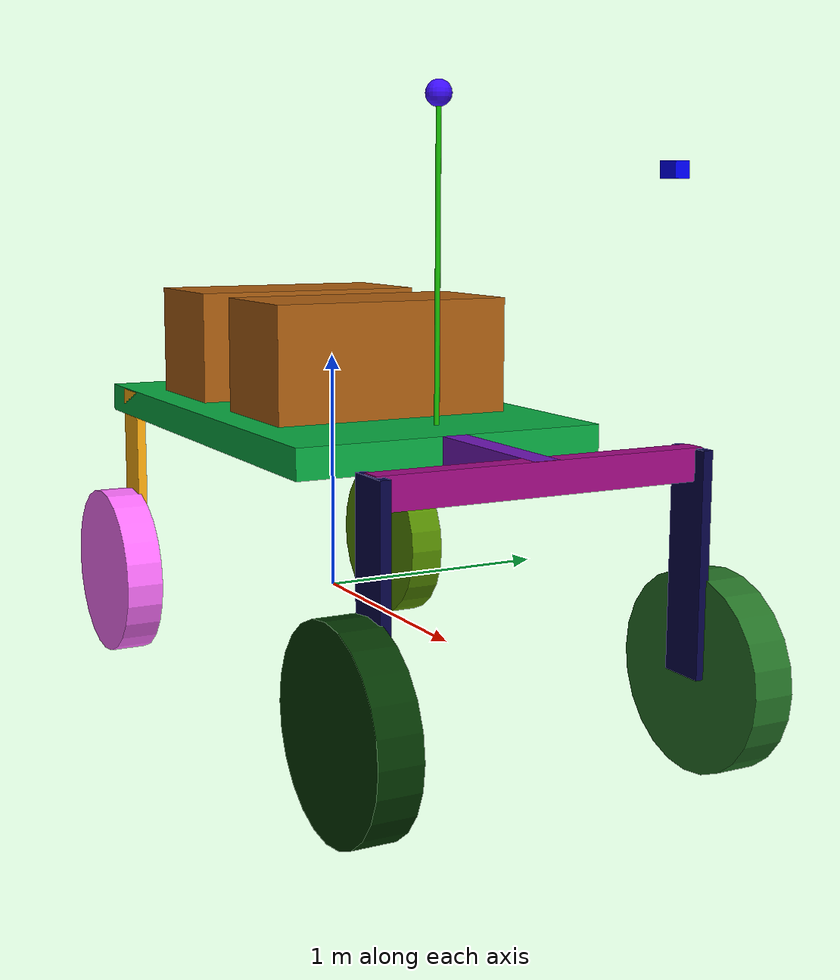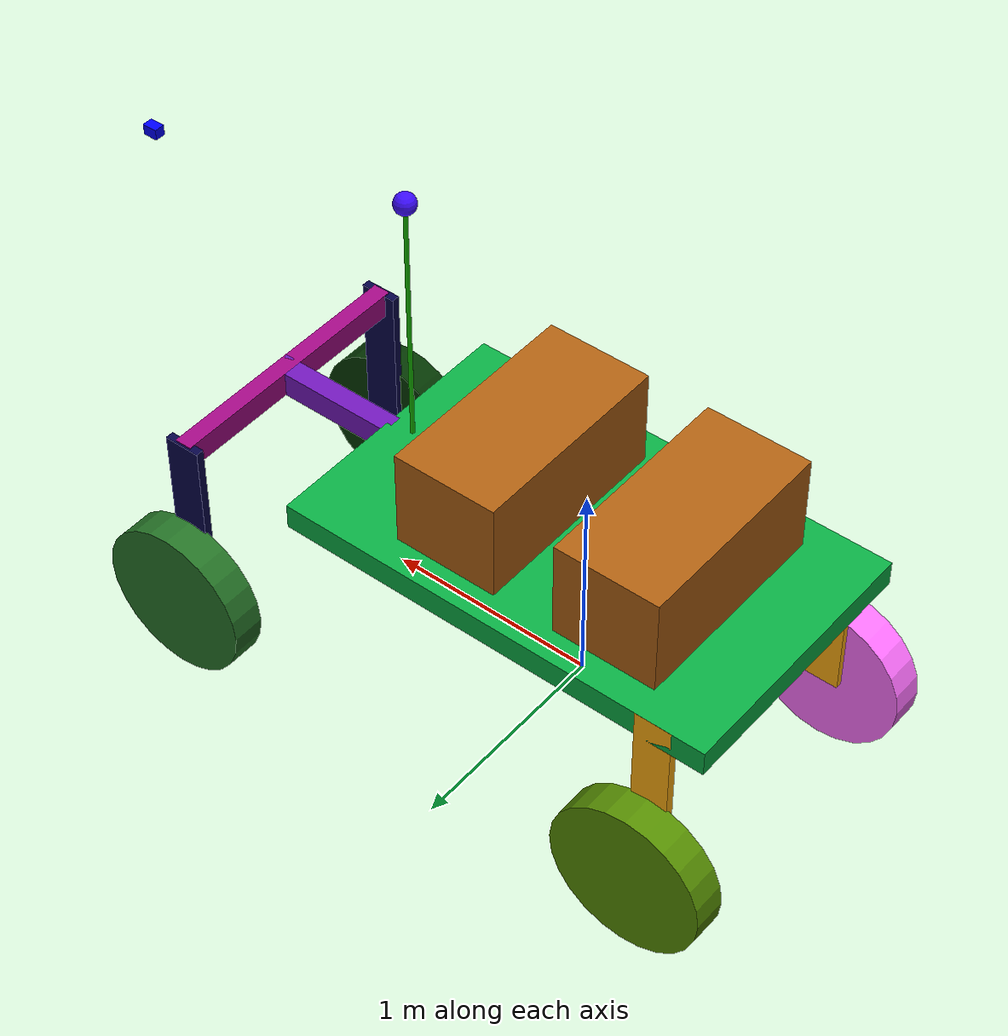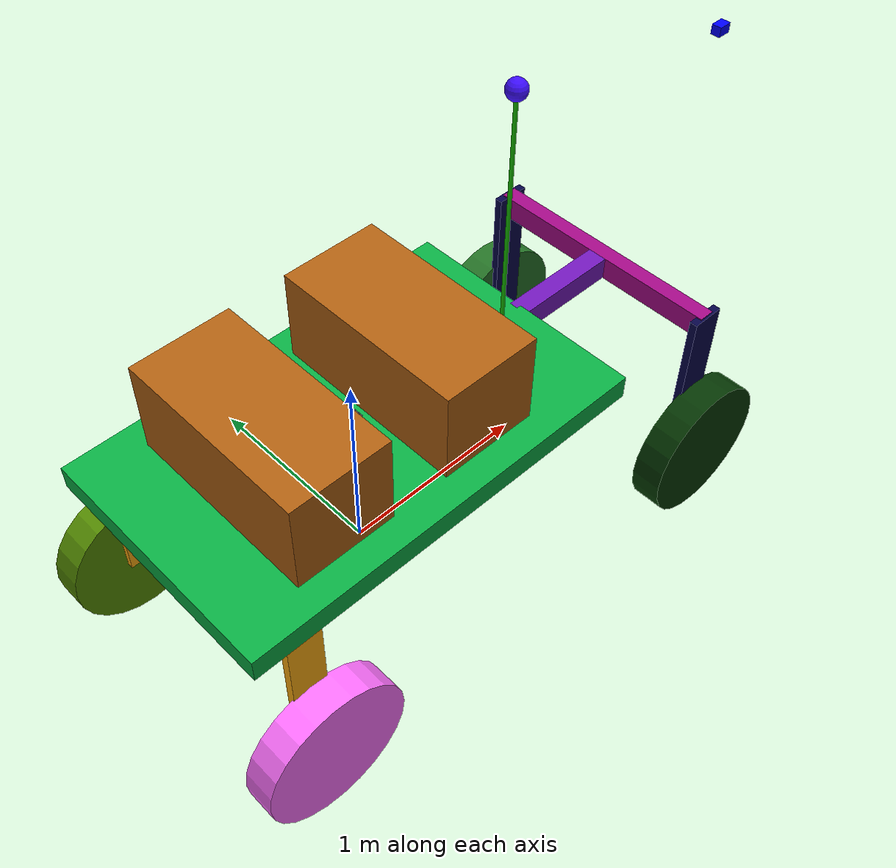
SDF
<sdf version='1.11'>
  <model name='my_robot'>
    <link name='base_footprint'>
      <inertial>
        <pose>-0.047846891008250701 -7.9111714246677172e-06 0.77992008474513574 0 0 0</pose>
        <mass>542.30000000000007</mass>
        <inertia>
          <ixx>94.110358383356925</ixx>
          <ixy>0.004152284086657014</ixy>
          <ixz>-10.802908813464351</ixz>
          <iyy>207.84156108052571</iyy>
          <iyz>-0.03680997659772535</iyz>
          <izz>264.91518770201259</izz>
        </inertia>
      </inertial>
      <collision name='base_footprint_fixed_joint_lump__base_link_collision'>
        <pose>0 0 0.73999999999999999 0 0 3.1415926535897931</pose>
        <geometry>
          <box>
            <size>2.1099999999999999 1.28 0.12</size>
          </box>
        </geometry>
        <surface>
          <contact>
            <ode/>
          </contact>
          <friction>
            <ode/>
          </friction>
        </surface>
      </collision>
      <collision name='base_footprint_fixed_joint_lump__back_left_base_collision_1'>
        <pose>-0.812261587359978 0.62000000000000011 0.38439626969322149 0 0 3.1415926535897931</pose>
        <geometry>
          <box>
            <size>0.17499999999999999 0.040000000000000001 0.82999999999999996</size>
          </box>
        </geometry>
      </collision>
      <collision name='base_footprint_fixed_joint_lump__back_load_collision_2'>
        <pose>-0.46646768743264949 5.7125816032006232e-17 1.0153277941857759 0 0 3.1415926535897931</pose>
        <geometry>
          <box>
            <size>0.5 1 0.5</size>
          </box>
        </geometry>
      </collision>
      <collision name='base_footprint_fixed_joint_lump__back_right_base_collision_3'>
        <pose>-0.81226158735997822 -0.61999999999999988 0.38 0 0 3.1415926535897931</pose>
        <geometry>
          <box>
            <size>0.17499999999999999 0.040000000000000001 0.82999999999999996</size>
          </box>
        </geometry>
      </collision>
      <collision name='base_footprint_fixed_joint_lump__front_load_collision_4'>
        <pose>0.32806438331095772 -4.0176299693601458e-17 1.0153277941857759 0 0 3.1415926535897931</pose>
        <geometry>
          <box>
            <size>0.5 1 0.5</size>
          </box>
        </geometry>
      </collision>
      <collision name='base_footprint_fixed_joint_lump__lidar_base_collision_5'>
        <pose>0.92000000000000004 -0.0021451141318012418 1.421195549355708 0 0 3.1415926535897931</pose>
        <geometry>
          <cylinder>
            <length>1.2</length>
            <radius>0.01</radius>
          </cylinder>
        </geometry>
      </collision>
      <collision name='base_footprint_fixed_joint_lump__lidar_collision_6'>
        <pose>0.92000000000000004 -0.0021451141318012418 2.0384650020977459 0 0 3.1415926535897931</pose>
        <geometry>
          <sphere>
            <radius>0.050000000000000003</radius>
          </sphere>
        </geometry>
        <surface>
          <contact>
            <ode/>
          </contact>
          <friction>
            <ode/>
          </friction>
        </surface>
      </collision>
      <collision name='base_footprint_fixed_joint_lump__gps_link_collision_8'>
        <pose>0 0 0.81000000000000005 0 0 3.1415926535897931</pose>
        <geometry>
          <box>
            <size>0.070000000000000007 0.050000000000000003 0.050000000000000003</size>
          </box>
        </geometry>
        <surface>
          <contact>
            <ode/>
          </contact>
          <friction>
            <ode/>
          </friction>
        </surface>
      </collision>
      <collision name='base_footprint_fixed_joint_lump__imu_link_collision_9'>
        <pose>-0.10000000000000001 1.224646799147353e-17 0.83999999999999997 0 0 3.1415926535897931</pose>
        <geometry>
          <box>
            <size>0.070000000000000007 0.050000000000000003 0.050000000000000003</size>
          </box>
        </geometry>
        <surface>
          <contact>
            <ode/>
          </contact>
          <friction>
            <ode/>
          </friction>
        </surface>
      </collision>
      <visual name='base_footprint_fixed_joint_lump__base_link_visual'>
        <pose>0 0 0.73999999999999999 0 0 3.1415926535897931</pose>
        <geometry>
          <box>
            <size>2.1099999999999999 1.28 0.12</size>
          </box>
        </geometry>
        <material>
          <script>
            <name>Gazebo/Grey</name>
            <uri>file://media/materials/scripts/gazebo.material</uri>
          </script>
          <diffuse>0.0341511145 0.674349368 0.26079607 1</diffuse>
          <ambient>0.0341511145 0.674349368 0.26079607 1</ambient>
        </material>
      </visual>
      <visual name='base_footprint_fixed_joint_lump__back_left_base_visual_1'>
        <pose>-0.812261587359978 0.62000000000000011 0.38439626969322149 0 0 3.1415926535897931</pose>
        <geometry>
          <box>
            <size>0.17499999999999999 0.040000000000000001 0.82999999999999996</size>
          </box>
        </geometry>
        <material>
          <diffuse>1 0.68215555 0.0602147803 1</diffuse>
          <ambient>1 0.68215555 0.0602147803 1</ambient>
        </material>
      </visual>
      <visual name='base_footprint_fixed_joint_lump__back_load_visual_2'>
        <pose>-0.46646768743264949 5.7125816032006232e-17 1.0153277941857759 0 0 3.1415926535897931</pose>
        <geometry>
          <box>
            <size>0.5 1 0.5</size>
          </box>
        </geometry>
        <material>
          <diffuse>0.68215555 0.375679731 0.0701606125 1</diffuse>
          <ambient>0.68215555 0.375679731 0.0701606125 1</ambient>
        </material>
      </visual>
      <visual name='base_footprint_fixed_joint_lump__back_right_base_visual_3'>
        <pose>-0.81226158735997822 -0.61999999999999988 0.38 0 0 3.1415926535897931</pose>
        <geometry>
          <box>
            <size>0.17499999999999999 0.040000000000000001 0.82999999999999996</size>
          </box>
        </geometry>
        <material>
          <diffuse>1 0.68215555 0.0602147803 1</diffuse>
          <ambient>1 0.68215555 0.0602147803 1</ambient>
        </material>
      </visual>
      <visual name='base_footprint_fixed_joint_lump__front_load_visual_4'>
        <pose>0.32806438331095772 -4.0176299693601458e-17 1.0153277941857759 0 0 3.1415926535897931</pose>
        <geometry>
          <box>
            <size>0.5 1 0.5</size>
          </box>
        </geometry>
        <material>
          <diffuse>0.68215555 0.375679731 0.0701606125 1</diffuse>
          <ambient>0.68215555 0.375679731 0.0701606125 1</ambient>
        </material>
      </visual>
      <visual name='base_footprint_fixed_joint_lump__lidar_base_visual_5'>
        <pose>0.92000000000000004 -0.0021451141318012418 1.421195549355708 0 0 3.1415926535897931</pose>
        <geometry>
          <cylinder>
            <length>1.2</length>
            <radius>0.01</radius>
          </cylinder>
        </geometry>
        <material>
          <diffuse>0.083282426 0.738273561 0.0100289909 1</diffuse>
          <ambient>0.083282426 0.738273561 0.0100289909 1</ambient>
        </material>
      </visual>
      <visual name='base_footprint_fixed_joint_lump__lidar_visual_6'>
        <pose>0.92000000000000004 -0.0021451141318012418 2.0384650020977459 0 0 3.1415926535897931</pose>
        <geometry>
          <sphere>
            <radius>0.050000000000000003</radius>
          </sphere>
        </geometry>
        <material>
          <diffuse>0.239002109 0.0494327955 1 1</diffuse>
          <ambient>0.239002109 0.0494327955 1 1</ambient>
        </material>
      </visual>
      <visual name='base_footprint_fixed_joint_lump__gps_link_visual_8'>
        <pose>0 0 0.81000000000000005 0 0 3.1415926535897931</pose>
        <geometry>
          <box>
            <size>0.070000000000000007 0.050000000000000003 0.050000000000000003</size>
          </box>
        </geometry>
        <material>
          <diffuse>0 0 0 1</diffuse>
          <ambient>0 0 0 1</ambient>
        </material>
      </visual>
      <visual name='base_footprint_fixed_joint_lump__imu_link_visual_9'>
        <pose>-0.10000000000000001 1.224646799147353e-17 0.83999999999999997 0 0 3.1415926535897931</pose>
        <geometry>
          <box>
            <size>0.070000000000000007 0.050000000000000003 0.050000000000000003</size>
          </box>
        </geometry>
        <material>
          <diffuse>0 0 1 1</diffuse>
          <ambient>0 0 1 1</ambient>
        </material>
      </visual>
      <sensor name='gpu_lidar' type='gpu_lidar'>
        <update_rate>10</update_rate>
        <topic>scan</topic>
        <lidar>
          <scan>
            <horizontal>
              <samples>720</samples>
              <resolution>1</resolution>
              <min_angle>-3.1415926535897931</min_angle>
              <max_angle>3.1415926535897931</max_angle>
            </horizontal>
          </scan>
          <range>
            <min>0.050000000000000003</min>
            <max>10</max>
            <resolution>0.01</resolution>
          </range>
          <noise>
            <type>gaussian</type>
            <mean>0</mean>
            <stddev>0.01</stddev>
          </noise>
          <frame_id>lidar</frame_id>
        </lidar>
        <always_on>true</always_on>
        <visualize>true</visualize>
        <pose>0.92000000000000004 -0.00214511 2.0384600000000002 0 0 3.1415899999999999</pose>
        <gz_frame_id>lidar</gz_frame_id>
      </sensor>
      <sensor name='navsat' type='navsat'>
        <always_on>true</always_on>
        <update_rate>10</update_rate>
        <topic>navsat</topic>
        <pose>0 0 0.81000000000000005 0 0 3.1415899999999999</pose>
        <gz_frame_id>gps_link</gz_frame_id>
        <gps/>
      </sensor>
      <sensor name='imu' type='imu'>
        <update_rate>10</update_rate>
        <always_on>true</always_on>
        <update_rate>1</update_rate>
        <visualize>true</visualize>
        <topic>imu</topic>
        <pose>-0.10000000000000001 1.22465e-17 0.83999999999999997 0 0 3.1415899999999999</pose>
        <gz_frame_id>imu_link</gz_frame_id>
        <imu/>
      </sensor>
    </link>
    <joint name='back_left_base_to_back_left_wheel' type='revolute'>
      <pose relative_to='base_footprint'>-0.812261587359978 0.71000000000000008 -0.025603730306778431 1.5707963267948959 0 3.1415926535897931</pose>
      <parent>base_footprint</parent>
      <child>back_left_wheel</child>
      <axis>
        <xyz>0 0 1</xyz>
        <limit>
          <lower>-inf</lower>
          <upper>inf</upper>
        </limit>
        <dynamics>
          <spring_reference>0</spring_reference>
          <spring_stiffness>0</spring_stiffness>
        </dynamics>
      </axis>
    </joint>
    <link name='back_left_wheel'>
      <pose relative_to='back_left_base_to_back_left_wheel'>0 0 0 0 0 0</pose>
      <inertial>
        <pose>0 0 0 0 0 0</pose>
        <mass>60</mass>
        <inertia>
          <ixx>2.1800000000000002</ixx>
          <ixy>0</ixy>
          <ixz>0</ixz>
          <iyy>2.1800000000000002</iyy>
          <iyz>0</iyz>
          <izz>4.1070000000000002</izz>
        </inertia>
      </inertial>
      <collision name='back_left_wheel_collision'>
        <pose>0 0 0 0 0 0</pose>
        <geometry>
          <cylinder>
            <length>0.16</length>
            <radius>0.37</radius>
          </cylinder>
        </geometry>
      </collision>
      <visual name='back_left_wheel_visual'>
        <pose>0 0 0 0 0 0</pose>
        <geometry>
          <cylinder>
            <length>0.16</length>
            <radius>0.37</radius>
          </cylinder>
        </geometry>
        <material>
          <diffuse>0.332944512 0.549571455 0.00756104104 1</diffuse>
          <ambient>0.332944512 0.549571455 0.00756104104 1</ambient>
        </material>
      </visual>
    </link>
    <joint name='back_right_base_to_back_right_wheel' type='revolute'>
      <pose relative_to='base_footprint'>-0.81226158735997822 -0.70999999999999985 -0.03000000000000003 1.5707963267948959 0 3.1415926535897931</pose>
      <parent>base_footprint</parent>
      <child>back_right_wheel</child>
      <axis>
        <xyz>0 0 1</xyz>
        <limit>
          <lower>-inf</lower>
          <upper>inf</upper>
        </limit>
        <dynamics>
          <spring_reference>0</spring_reference>
          <spring_stiffness>0</spring_stiffness>
        </dynamics>
      </axis>
    </joint>
    <link name='back_right_wheel'>
      <pose relative_to='back_right_base_to_back_right_wheel'>0 0 0 0 0 0</pose>
      <inertial>
        <pose>0 0 0 0 0 0</pose>
        <mass>60</mass>
        <inertia>
          <ixx>2.1800000000000002</ixx>
          <ixy>0</ixy>
          <ixz>0</ixz>
          <iyy>2.1800000000000002</iyy>
          <iyz>0</iyz>
          <izz>4.1070000000000002</izz>
        </inertia>
      </inertial>
      <collision name='back_right_wheel_collision'>
        <pose>0 0 0 0 0 0</pose>
        <geometry>
          <cylinder>
            <length>0.16</length>
            <radius>0.37</radius>
          </cylinder>
        </geometry>
      </collision>
      <visual name='back_right_wheel_visual'>
        <pose>0 0 0 0 0 0</pose>
        <geometry>
          <cylinder>
            <length>0.16</length>
            <radius>0.37</radius>
          </cylinder>
        </geometry>
        <material>
          <diffuse>1 0.439415753 1 1</diffuse>
          <ambient>1 0.439415753 1 1</ambient>
        </material>
      </visual>
    </link>
    <joint name='base_link_to_wheeling_mech' type='revolute'>
      <pose relative_to='base_footprint'>1.051211695797214 -1.2873630384843189e-16 0.73999999999999999 0 0 3.1415926535897931</pose>
      <parent>base_footprint</parent>
      <child>wheeling_mech</child>
      <axis>
        <xyz>0 0 1</xyz>
        <limit>
          <lower>-0.29999999999999999</lower>
          <upper>0.29999999999999999</upper>
          <effort>3000</effort>
          <velocity>1</velocity>
        </limit>
        <dynamics>
          <damping>0.10000000000000001</damping>
          <friction>0.5</friction>
          <spring_reference>0</spring_reference>
          <spring_stiffness>0</spring_stiffness>
        </dynamics>
      </axis>
    </joint>
    <link name='wheeling_mech'>
      <pose relative_to='base_link_to_wheeling_mech'>0 0 0 0 0 0</pose>
      <inertial>
        <pose>-0.47541038759423693 -1.366428338000193e-17 -0.08307692307692309 0 0 0</pose>
        <mass>130</mass>
        <inertia>
          <ixx>23.612769230769221</ixx>
          <ixy>-1.9474465106554461e-16</ixy>
          <ixz>-1.1840201162610979</ixz>
          <iyy>9.1357345619410033</iyy>
          <iyz>1.4757426050402081e-16</iyz>
          <izz>23.053965331171781</izz>
        </inertia>
      </inertial>
      <collision name='wheeling_mech_collision'>
        <pose>-0.29999999999999999 0 0 0 0 0</pose>
        <geometry>
          <box>
            <size>0.64000000000000001 0.10000000000000001 0.12</size>
          </box>
        </geometry>
      </collision>
      <collision name='wheeling_mech_fixed_joint_lump__front_wheels_base_collision_1'>
        <pose>-0.58504187984063494 0 0 0 0 0</pose>
        <geometry>
          <box>
            <size>0.082000000000000003 1.28 0.12</size>
          </box>
        </geometry>
      </collision>
      <collision name='wheeling_mech_fixed_joint_lump__front_left_base_collision_2'>
        <pose>-0.58504187984063494 -0.63 -0.35999999999999999 0 0 0</pose>
        <geometry>
          <box>
            <size>0.17499999999999999 0.040000000000000001 0.82999999999999996</size>
          </box>
        </geometry>
      </collision>
      <collision name='wheeling_mech_fixed_joint_lump__front_right_base_collision_3'>
        <pose>-0.58504187984063494 0.63 -0.35999999999999999 0 0 0</pose>
        <geometry>
          <box>
            <size>0.17499999999999999 0.040000000000000001 0.82999999999999996</size>
          </box>
        </geometry>
      </collision>
      <visual name='wheeling_mech_visual'>
        <pose>-0.29999999999999999 0 0 0 0 0</pose>
        <geometry>
          <box>
            <size>0.64000000000000001 0.10000000000000001 0.12</size>
          </box>
        </geometry>
        <material>
          <diffuse>0.439415753 0.0879501179 0.721975565 1</diffuse>
          <ambient>0.439415753 0.0879501179 0.721975565 1</ambient>
        </material>
      </visual>
      <visual name='wheeling_mech_fixed_joint_lump__front_wheels_base_visual_1'>
        <pose>-0.58504187984063494 0 0 0 0 0</pose>
        <geometry>
          <box>
            <size>0.082000000000000003 1.28 0.12</size>
          </box>
        </geometry>
        <material>
          <diffuse>0.628608108 0.031483572 0.515678287 1</diffuse>
          <ambient>0.628608108 0.031483572 0.515678287 1</ambient>
        </material>
      </visual>
      <visual name='wheeling_mech_fixed_joint_lump__front_left_base_visual_2'>
        <pose>-0.58504187984063494 -0.63 -0.35999999999999999 0 0 0</pose>
        <geometry>
          <box>
            <size>0.17499999999999999 0.040000000000000001 0.82999999999999996</size>
          </box>
        </geometry>
        <material>
          <diffuse>0.0210092198 0.0137001174 0.274407744 1</diffuse>
          <ambient>0.0210092198 0.0137001174 0.274407744 1</ambient>
        </material>
      </visual>
      <visual name='wheeling_mech_fixed_joint_lump__front_right_base_visual_3'>
        <pose>-0.58504187984063494 0.63 -0.35999999999999999 0 0 0</pose>
        <geometry>
          <box>
            <size>0.17499999999999999 0.040000000000000001 0.82999999999999996</size>
          </box>
        </geometry>
        <material>
          <diffuse>0.0210092198 0.0137001174 0.274407744 1</diffuse>
          <ambient>0.0210092198 0.0137001174 0.274407744 1</ambient>
        </material>
      </visual>
    </link>
    <joint name='front_left_base_to_front_left_wheel' type='revolute'>
      <pose relative_to='wheeling_mech'>-0.58504187984063494 -0.71999999999999997 -0.77000000000000002 1.5707963267948959 0 0</pose>
      <parent>wheeling_mech</parent>
      <child>front_left_wheel</child>
      <axis>
        <xyz>0 0 1</xyz>
        <limit>
          <lower>-inf</lower>
          <upper>inf</upper>
        </limit>
        <dynamics>
          <spring_reference>0</spring_reference>
          <spring_stiffness>0</spring_stiffness>
        </dynamics>
      </axis>
    </joint>
    <link name='front_left_wheel'>
      <pose relative_to='front_left_base_to_front_left_wheel'>0 0 0 0 0 0</pose>
      <inertial>
        <pose>0 0 0 0 0 0</pose>
        <mass>60</mass>
        <inertia>
          <ixx>2.1800000000000002</ixx>
          <ixy>0</ixy>
          <ixz>0</ixz>
          <iyy>2.1800000000000002</iyy>
          <iyz>0</iyz>
          <izz>4.1070000000000002</izz>
        </inertia>
      </inertial>
      <collision name='front_left_wheel_collision'>
        <pose>0 0 0 0 0 0</pose>
        <geometry>
          <cylinder>
            <length>0.16</length>
            <radius>0.37</radius>
          </cylinder>
        </geometry>
      </collision>
      <visual name='front_left_wheel_visual'>
        <pose>0 0 0 0 0 0</pose>
        <geometry>
          <cylinder>
            <length>0.16</length>
            <radius>0.37</radius>
          </cylinder>
        </geometry>
        <material>
          <diffuse>0.143044218 0.445500165 0.149423033 1</diffuse>
          <ambient>0.143044218 0.445500165 0.149423033 1</ambient>
        </material>
      </visual>
    </link>
    <joint name='front_right_base_to_front_right_wheel' type='revolute'>
      <pose relative_to='wheeling_mech'>-0.58504187984063494 0.71999999999999997 -0.77000000000000002 1.5707963267948959 0 0</pose>
      <parent>wheeling_mech</parent>
      <child>front_right_wheel</child>
      <axis>
        <xyz>0 0 1</xyz>
        <limit>
          <lower>-inf</lower>
          <upper>inf</upper>
        </limit>
        <dynamics>
          <spring_reference>0</spring_reference>
          <spring_stiffness>0</spring_stiffness>
        </dynamics>
      </axis>
    </joint>
    <link name='front_right_wheel'>
      <pose relative_to='front_right_base_to_front_right_wheel'>0 0 0 0 0 0</pose>
      <inertial>
        <pose>0 0 0 0 0 0</pose>
        <mass>60</mass>
        <inertia>
          <ixx>2.1800000000000002</ixx>
          <ixy>0</ixy>
          <ixz>0</ixz>
          <iyy>2.1800000000000002</iyy>
          <iyz>0</iyz>
          <izz>4.1070000000000002</izz>
        </inertia>
      </inertial>
      <collision name='front_right_wheel_collision'>
        <pose>0 0 0 0 0 0</pose>
        <geometry>
          <cylinder>
            <length>0.16</length>
            <radius>0.37</radius>
          </cylinder>
        </geometry>
      </collision>
      <visual name='front_right_wheel_visual'>
        <pose>0 0 0 0 0 0</pose>
        <geometry>
          <cylinder>
            <length>0.16</length>
            <radius>0.37</radius>
          </cylinder>
        </geometry>
        <material>
          <diffuse>0.0171276033 0.210336745 0.0114175733 1</diffuse>
          <ambient>0.0171276033 0.210336745 0.0114175733 1</ambient>
        </material>
      </visual>
    </link>
    <plugin name='gz_ros2_control::GazeboSimROS2ControlPlugin' filename='libgz_ros2_control-system.so'>
      <parameters>/home/alexey/ros2_ws/src/my_robot/config/new_controllers.yaml</parameters>
    </plugin>
    <frame name='base_link_to_back_left_base' attached_to='base_link'>
      <pose>0.81226158735997811 -0.62 -0.3556037303067785 0 0 0</pose>
    </frame>
    <frame name='back_left_base' attached_to='base_link_to_back_left_base'>
      <pose>0 0 0 0 0 0</pose>
    </frame>
    <frame name='base_link_to_back_load' attached_to='base_link'>
      <pose>0.46646768743264949 0 0.27532779418577569 0 0 0</pose>
    </frame>
    <frame name='back_load' attached_to='base_link_to_back_load'>
      <pose>0 0 0 0 0 0</pose>
    </frame>
    <frame name='base_link_to_back_right_base' attached_to='base_link'>
      <pose>0.81226158735997811 0.62 -0.35999999999999999 0 0 0</pose>
    </frame>
    <frame name='back_right_base' attached_to='base_link_to_back_right_base'>
      <pose>0 0 0 0 0 0</pose>
    </frame>
    <frame name='base_link_to_front_load' attached_to='base_link'>
      <pose>-0.32806438331095772 0 0.27532779418577569 0 0 0</pose>
    </frame>
    <frame name='front_load' attached_to='base_link_to_front_load'>
      <pose>0 0 0 0 0 0</pose>
    </frame>
    <frame name='lidar_base_to_lidar' attached_to='lidar_base'>
      <pose>0 0 0.61726945274203782 0 0 0</pose>
    </frame>
    <frame name='lidar' attached_to='lidar_base_to_lidar'>
      <pose>0 0 0 0 0 0</pose>
    </frame>
    <frame name='base_link_to_lidar_base' attached_to='base_link'>
      <pose>-0.92000000000000004 0.0021451141318011291 0.68119554935570792 0 0 0</pose>
    </frame>
    <frame name='lidar_base' attached_to='base_link_to_lidar_base'>
      <pose>0 0 0 0 0 0</pose>
    </frame>
    <joint name='front_wheels_base_to_depth_camera' type='revolute'>
      <pose relative_to='base_footprint'>2.2999999999999998 0 1.74 0 0 0</pose>
      <parent>base_footprint</parent>
      <child>depth_camera_link</child>
      <axis>
        <xyz>0 1 0</xyz>
        <limit>
          <lower>0.0</lower>
          <upper>2.09</upper>
          <effort>10</effort>
          <velocity>1</velocity>
        </limit>
        <dynamics>
          <damping>0.1</damping>
          <spring_reference>0</spring_reference>
          <spring_stiffness>0</spring_stiffness>
        </dynamics>
        <initial_position>1.35</initial_position>
      </axis>
    </joint>
    <link name='depth_camera_link'>
      <pose relative_to='front_wheels_base_to_depth_camera'>0 0 0 0 0 0</pose>
      <inertial>
        <mass>0.1</mass>
        <inertia>
          <ixx>0.0001</ixx><ixy>0</ixy><ixz>0</ixz>
          <iyy>0.0001</iyy><iyz>0</iyz><izz>0.0001</izz>
        </inertia>
      </inertial>
      <collision name='depth_camera_link_collision'>
        <geometry><box><size>0.07 0.05 0.05</size></box></geometry>
      </collision>
      <visual name='depth_camera_link_visual'>
        <geometry><box><size>0.07 0.05 0.05</size></box></geometry>
        <material><diffuse>0 0 1 1</diffuse><ambient>0 0 1 1</ambient></material>
      </visual>
      <sensor name='rs_front' type='rgbd_camera'>
        <always_on>true</always_on>
        <update_rate>10</update_rate>
        <camera>
          <horizontal_fov>1.50098</horizontal_fov>
          <image><width>1280</width><height>720</height><format>B8G8R8</format></image>
          <clip><near>0.01</near><far>300</far></clip>
          <depth_camera>
            <clip><near>0.1</near><far>10</far></clip>
            <output>depths</output>
          </depth_camera>
          <noise><type>gaussian</type><mean>0</mean><stddev>0.007</stddev></noise>
        </camera>
        <topic>rs_front</topic>
        <visualize>true</visualize>
        <pose>0 0 0 0 0 0</pose>
        <gz_frame_id>depth_camera_link</gz_frame_id>
      </sensor>
    </link>
    <frame name='gps_joint' attached_to='base_link'>
      <pose>0 0 0.070000000000000007 0 0 0</pose>
    </frame>
    <frame name='gps_link' attached_to='gps_joint'>
      <pose>0 0 0 0 0 0</pose>
    </frame>
    <frame name='imu_joint' attached_to='base_link'>
      <pose>0.10000000000000001 0 0.10000000000000001 0 0 0</pose>
    </frame>
    <frame name='imu_link' attached_to='imu_joint'>
      <pose>0 0 0 0 0 0</pose>
    </frame>
    <frame name='base_joint' attached_to='base_footprint'>
      <pose>0 0 0.73999999999999999 0 0 3.1415926535897931</pose>
    </frame>
    <frame name='base_link' attached_to='base_joint'>
      <pose>0 0 0 0 0 0</pose>
    </frame>
    <frame name='front_wheels_base_to_front_left_base' attached_to='front_wheels_base'>
      <pose>0 -0.63 -0.35999999999999999 0 0 0</pose>
    </frame>
    <frame name='front_left_base' attached_to='front_wheels_base_to_front_left_base'>
      <pose>0 0 0 0 0 0</pose>
    </frame>
    <frame name='front_wheels_base_to_front_right_base' attached_to='front_wheels_base'>
      <pose>0 0.63 -0.35999999999999999 0 0 0</pose>
    </frame>
    <frame name='front_right_base' attached_to='front_wheels_base_to_front_right_base'>
      <pose>0 0 0 0 0 0</pose>
    </frame>
    <frame name='wheeling_mech_to_front_wheels_base' attached_to='wheeling_mech'>
      <pose>-0.58504187984063494 0 0 0 0 0</pose>
    </frame>
    <frame name='front_wheels_base' attached_to='wheeling_mech_to_front_wheels_base'>
      <pose>0 0 0 0 0 0</pose>
    </frame>
  </model>
</sdf>
